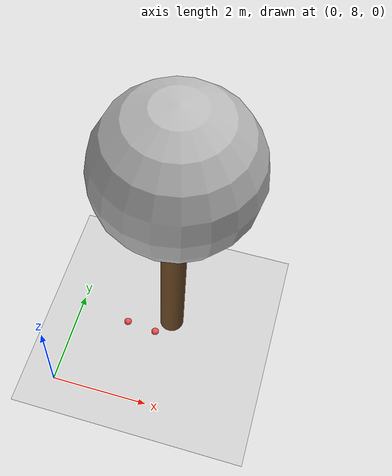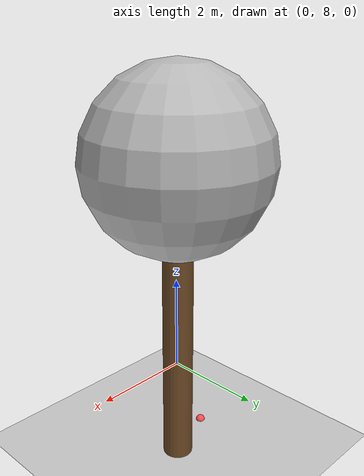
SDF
<sdf version="1.7">
 <world name="default">
  <model name="ground_plane">
   <static>1</static>
   <link name="link">
    <collision name="collision">
     <geometry><plane><normal>0 0 1</normal><size>100 100</size></plane></geometry>
     <surface>
      <contact><collide_bitmask>65535</collide_bitmask></contact>
      <friction><ode><mu>100</mu><mu2>50</mu2></ode></friction>
     </surface>
    </collision>
    <visual name="visual">
     <cast_shadows>0</cast_shadows>
     <geometry><plane><normal>0 0 1</normal><size>100 100</size></plane></geometry>
     <material>
      <script><uri>file://media/materials/scripts/gazebo.material</uri><name>Gazebo/Grey</name></script>
     </material>
    </visual>
   </link>
  </model>
  <model name="tree_simple_70">
   <static>1</static>
   <link name="link">
    <pose>0 0 0.1 0 -0 0</pose>
    <inertial>
     <mass>666</mass>
     <inertia>
      <ixx>0.0861167</ixx>
      <ixy>0</ixy>
      <ixz>0</ixz>
      <iyy>0.0861167</iyy>
      <iyz>0</iyz>
      <izz>0.0861167</izz>
     </inertia>
    </inertial>
    <collision name="collision_trunk">
     <pose>0 0 2 0 -0 0</pose>
     <geometry><cylinder><radius>0.25</radius><length>4</length></cylinder></geometry>
     <surface>
      <contact>
       <poissons_ratio>0.347</poissons_ratio>
       <elastic_modulus>8.8e+09</elastic_modulus>
       <ode><kp>100000</kp><kd>100</kd><max_vel>100</max_vel><min_depth>0.001</min_depth></ode>
      </contact>
      <friction>
       <torsional>
        <coefficient>1</coefficient>
        <use_patch_radius>0</use_patch_radius>
        <surface_radius>0.01</surface_radius>
       </torsional>
      </friction>
     </surface>
    </collision>
    <collision name="collision_treetop">
     <pose>0 0 5.2 0 -0 0</pose>
     <geometry><sphere><radius>1.5</radius></sphere></geometry>
     <surface>
      <contact>
       <poissons_ratio>0.347</poissons_ratio>
       <elastic_modulus>8.8e+09</elastic_modulus>
       <ode><kp>100000</kp><kd>100</kd><max_vel>100</max_vel><min_depth>0.001</min_depth></ode>
      </contact>
      <friction>
       <torsional>
        <coefficient>1</coefficient>
        <use_patch_radius>0</use_patch_radius>
        <surface_radius>0.01</surface_radius>
       </torsional>
      </friction>
     </surface>
    </collision>
    <visual name="trunk">
     <pose>0 0 2 0 -0 0</pose>
     <geometry><cylinder><radius>0.25</radius><length>4</length></cylinder></geometry>
     <material>
      <script>
       <uri>model://tree_simple/scripts</uri>
       <uri>model://tree_simple/materials/textures</uri>
       <name>TreeSimple/Trunk</name>
      </script>
     </material>
    </visual>
    <visual name="treetop">
     <pose>0 0 5.2 0 -0 0</pose>
     <geometry><sphere><radius>1.5</radius></sphere></geometry>
     <material>
      <script>
       <uri>model://tree_simple/scripts</uri>
       <uri>model://tree_simple/materials/textures</uri>
       <name>TreeSimple/Treetop</name>
      </script>
     </material>
    </visual>
   </link>
   <pose>2 10 -0.1 0 -0 0</pose>
  </model>
  <model name="seed_red_292">
   <link name="link">
    <inertial>
     <mass>1</mass>
     <inertia><ixx>0.1</ixx><ixy>0</ixy><ixz>0</ixz><iyy>0.1</iyy><iyz>0</iyz><izz>0.1</izz></inertia>
    </inertial>
    <visual name="visual">
     <geometry><sphere><radius>0.08</radius></sphere></geometry>
     <material>
      <script><name>Gazebo/Grey</name><uri>file://media/materials/scripts/gazebo.material</uri></script>
      <shader type="pixel"><normal_map>__default__</normal_map></shader>
      <ambient>1 0.3 0.3 1</ambient>
      <diffuse>0.7 0.7 0.7 1</diffuse>
      <specular>0.01 0.01 0.01 1</specular>
      <emissive>0 0 0 1</emissive>
     </material>
    </visual>
    <collision name="collision">
     <geometry><sphere><radius>0.0005</radius></sphere></geometry>
     <surface>
      <friction>
       <ode><mu>1</mu><mu2>1</mu2><fdir1>0 0 0</fdir1><slip1>0</slip1><slip2>0</slip2></ode>
       <torsional>
        <coefficient>1</coefficient>
        <patch_radius>0</patch_radius>
        <surface_radius>0</surface_radius>
        <use_patch_radius>1</use_patch_radius>
        <ode><slip>0</slip></ode>
       </torsional>
      </friction>
      <bounce><restitution_coefficient>0</restitution_coefficient><threshold>1e+06</threshold></bounce>
      <contact>
       <collide_without_contact>0</collide_without_contact>
       <collide_without_contact_bitmask>1</collide_without_contact_bitmask>
       <collide_bitmask>1</collide_bitmask>
       <ode>
        <soft_cfm>0</soft_cfm>
        <soft_erp>0.2</soft_erp>
        <kp>1e+13</kp>
        <kd>1</kd>
        <max_vel>0.01</max_vel>
        <min_depth>0</min_depth>
       </ode>
       <bullet>
        <split_impulse>1</split_impulse>
        <split_impulse_penetration_threshold>-0.01</split_impulse_penetration_threshold>
        <soft_cfm>0</soft_cfm>
        <soft_erp>0.2</soft_erp>
        <kp>1e+13</kp>
        <kd>1</kd>
       </bullet>
      </contact>
     </surface>
    </collision>
   </link>
   <static>0</static>
   <pose>1.08508 9.70193 0.0005 0 -0 0</pose>
  </model>
  <model name="seed_red_293">
   <link name="link">
    <inertial>
     <mass>1</mass>
     <inertia><ixx>0.1</ixx><ixy>0</ixy><ixz>0</ixz><iyy>0.1</iyy><iyz>0</iyz><izz>0.1</izz></inertia>
    </inertial>
    <visual name="visual">
     <geometry><sphere><radius>0.08</radius></sphere></geometry>
     <material>
      <script><name>Gazebo/Grey</name><uri>file://media/materials/scripts/gazebo.material</uri></script>
      <shader type="pixel"><normal_map>__default__</normal_map></shader>
      <ambient>1 0.3 0.3 1</ambient>
      <diffuse>0.7 0.7 0.7 1</diffuse>
      <specular>0.01 0.01 0.01 1</specular>
      <emissive>0 0 0 1</emissive>
     </material>
    </visual>
    <collision name="collision">
     <geometry><sphere><radius>0.0005</radius></sphere></geometry>
     <surface>
      <friction>
       <ode><mu>1</mu><mu2>1</mu2><fdir1>0 0 0</fdir1><slip1>0</slip1><slip2>0</slip2></ode>
       <torsional>
        <coefficient>1</coefficient>
        <patch_radius>0</patch_radius>
        <surface_radius>0</surface_radius>
        <use_patch_radius>1</use_patch_radius>
        <ode><slip>0</slip></ode>
       </torsional>
      </friction>
      <bounce><restitution_coefficient>0</restitution_coefficient><threshold>1e+06</threshold></bounce>
      <contact>
       <collide_without_contact>0</collide_without_contact>
       <collide_without_contact_bitmask>1</collide_without_contact_bitmask>
       <collide_bitmask>1</collide_bitmask>
       <ode>
        <soft_cfm>0</soft_cfm>
        <soft_erp>0.2</soft_erp>
        <kp>1e+13</kp>
        <kd>1</kd>
        <max_vel>0.01</max_vel>
        <min_depth>0</min_depth>
       </ode>
       <bullet>
        <split_impulse>1</split_impulse>
        <split_impulse_penetration_threshold>-0.01</split_impulse_penetration_threshold>
        <soft_cfm>0</soft_cfm>
        <soft_erp>0.2</soft_erp>
        <kp>1e+13</kp>
        <kd>1</kd>
       </bullet>
      </contact>
     </surface>
    </collision>
   </link>
   <static>0</static>
   <pose>1.72432 9.64009 0.0005 0 -0 0</pose>
  </model>
 </world>
</sdf>
